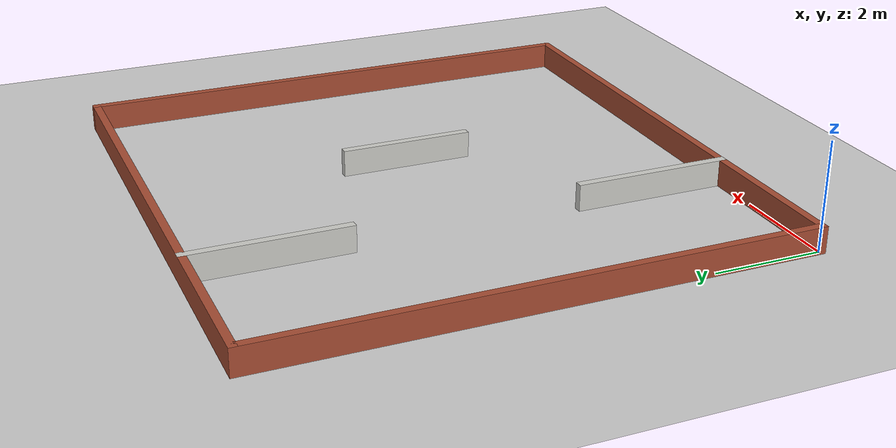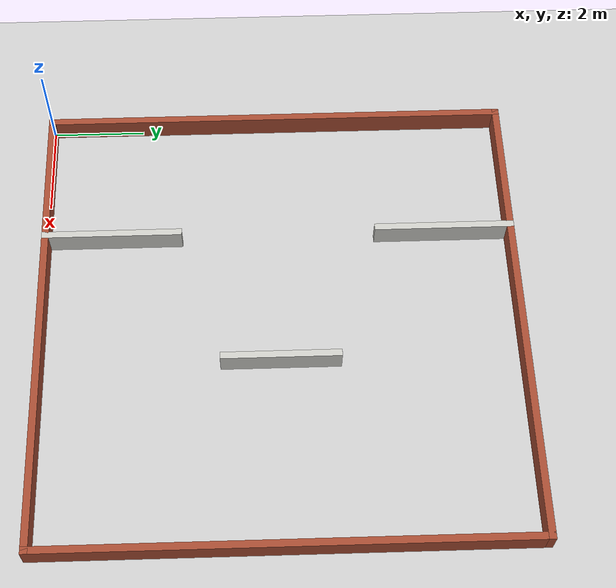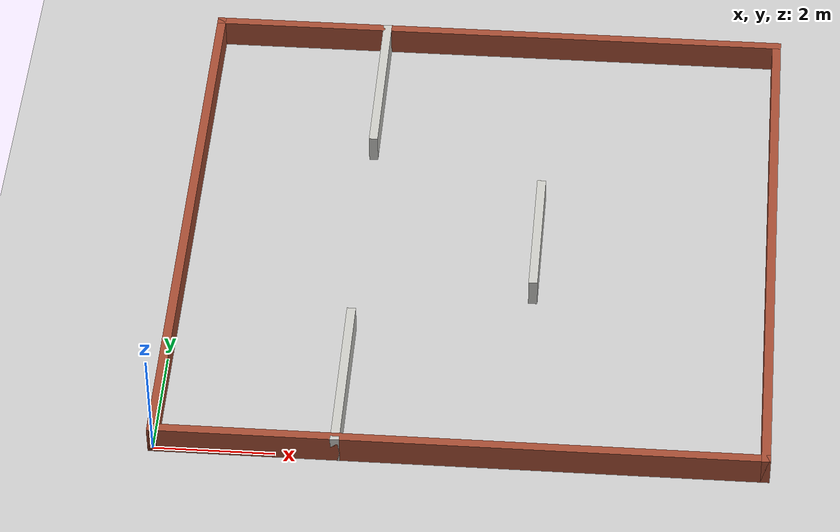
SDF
<sdf version="1.7">
 <world name="default">
  <light name="sun" type="directional">
   <pose>0 0 10 0 -0 0</pose>
   <diffuse>0.8 0.8 0.8 1</diffuse>
   <specular>0.2 0.2 0.2 1</specular>
   <attenuation>
    <range>1000</range>
    <constant>0.9</constant>
    <linear>0.01</linear>
    <quadratic>0.001</quadratic>
   </attenuation>
   <direction>-0.5 0.1 -0.9</direction>
   <spot><inner_angle>0</inner_angle><outer_angle>0</outer_angle><falloff>0</falloff></spot>
  </light>
  <model name="ground_plane">
   <static>1</static>
   <link name="link">
    <collision name="collision">
     <geometry><plane><normal>0 0 1</normal><size>100 100</size></plane></geometry>
     <surface>
      <contact><collide_bitmask>65535</collide_bitmask></contact>
      <friction><ode><mu>100</mu><mu2>50</mu2></ode></friction>
     </surface>
    </collision>
    <visual name="visual">
     <cast_shadows>0</cast_shadows>
     <geometry><plane><normal>0 0 1</normal><size>100 100</size></plane></geometry>
     <material>
      <script><uri>file://media/materials/scripts/gazebo.material</uri><name>Gazebo/Grey</name></script>
     </material>
    </visual>
   </link>
  </model>
  <gravity>0 0 -9.8</gravity>
  <magnetic_field>6e-06 2.3e-05 -4.2e-05</magnetic_field>
  <atmosphere type="adiabatic"/>
  <physics type="ode">
   <max_step_size>0.001</max_step_size>
   <real_time_factor>1</real_time_factor>
   <real_time_update_rate>1000</real_time_update_rate>
  </physics>
  <scene><ambient>0.4 0.4 0.4 1</ambient><background>0.7 0.7 0.7 1</background><shadows>1</shadows></scene>
  <spherical_coordinates>
   <surface_model>EARTH_WGS84</surface_model>
   <latitude_deg>0</latitude_deg>
   <longitude_deg>0</longitude_deg>
   <elevation>0</elevation>
   <heading_deg>0</heading_deg>
  </spherical_coordinates>
  <model name="map_lvl1">
   <pose>5 5 0 0 -0 0</pose>
   <link name="Wall_0">
    <collision name="Wall_0_Collision">
     <geometry><box><size>10.15 0.15 0.5</size></box></geometry>
     <pose>0 0 0.25 0 -0 0</pose>
    </collision>
    <visual name="Wall_0_Visual">
     <pose>0 0 0.25 0 -0 0</pose>
     <geometry><box><size>10.15 0.15 0.5</size></box></geometry>
     <material>
      <script><uri>file://media/materials/scripts/gazebo.material</uri><name>Gazebo/Bricks</name></script>
      <ambient>1 1 1 1</ambient>
     </material>
     <meta><layer>0</layer></meta>
    </visual>
    <pose>-5 -0 0 0 -0 1.5708</pose>
   </link>
   <link name="Wall_11">
    <collision name="Wall_11_Collision">
     <geometry><box><size>3 0.15 0.5</size></box></geometry>
     <pose>0 0 0.25 0 -0 0</pose>
    </collision>
    <visual name="Wall_11_Visual">
     <pose>0 0 0.25 0 -0 0</pose>
     <geometry><box><size>3 0.15 0.5</size></box></geometry>
     <material>
      <script><uri>file://media/materials/scripts/gazebo.material</uri><name>Gazebo/CeilingTiled</name></script>
      <ambient>1 0.764706 0.305882 1</ambient>
     </material>
     <meta><layer>0</layer></meta>
    </visual>
    <pose>-2 3.575 0 0 -0 -1.5708</pose>
   </link>
   <link name="Wall_13">
    <collision name="Wall_13_Collision">
     <geometry><box><size>2.5 0.15 0.5</size></box></geometry>
     <pose>0 0 0.25 0 -0 0</pose>
    </collision>
    <visual name="Wall_13_Visual">
     <pose>0 0 0.25 0 -0 0</pose>
     <geometry><box><size>2.5 0.15 0.5</size></box></geometry>
     <material>
      <script><uri>file://media/materials/scripts/gazebo.material</uri><name>Gazebo/CeilingTiled</name></script>
      <ambient>1 0.764706 0.305882 1</ambient>
     </material>
     <meta><layer>0</layer></meta>
    </visual>
    <pose>1 -0.024 0 0 -0 1.5708</pose>
   </link>
   <link name="Wall_2">
    <collision name="Wall_2_Collision">
     <geometry><box><size>10.15 0.15 0.5</size></box></geometry>
     <pose>0 0 0.25 0 -0 0</pose>
    </collision>
    <visual name="Wall_2_Visual">
     <pose>0 0 0.25 0 -0 0</pose>
     <geometry><box><size>10.15 0.15 0.5</size></box></geometry>
     <material>
      <script><uri>file://media/materials/scripts/gazebo.material</uri><name>Gazebo/Bricks</name></script>
      <ambient>1 1 1 1</ambient>
     </material>
     <meta><layer>0</layer></meta>
    </visual>
    <pose>-0 -5 0 0 -0 0</pose>
   </link>
   <link name="Wall_4">
    <collision name="Wall_4_Collision">
     <geometry><box><size>10.15 0.15 0.5</size></box></geometry>
     <pose>0 0 0.25 0 -0 0</pose>
    </collision>
    <visual name="Wall_4_Visual">
     <pose>0 0 0.25 0 -0 0</pose>
     <geometry><box><size>10.15 0.15 0.5</size></box></geometry>
     <material>
      <script><uri>file://media/materials/scripts/gazebo.material</uri><name>Gazebo/Bricks</name></script>
      <ambient>1 1 1 1</ambient>
     </material>
     <meta><layer>0</layer></meta>
    </visual>
    <pose>5 -0 0 0 -0 1.5708</pose>
   </link>
   <link name="Wall_6">
    <collision name="Wall_6_Collision">
     <geometry><box><size>10.15 0.15 0.5</size></box></geometry>
     <pose>0 0 0.25 0 -0 0</pose>
    </collision>
    <visual name="Wall_6_Visual">
     <pose>0 0 0.25 0 -0 0</pose>
     <geometry><box><size>10.15 0.15 0.5</size></box></geometry>
     <material>
      <script><uri>file://media/materials/scripts/gazebo.material</uri><name>Gazebo/Bricks</name></script>
      <ambient>1 1 1 1</ambient>
     </material>
     <meta><layer>0</layer></meta>
    </visual>
    <pose>-0 5 0 0 -0 3.14159</pose>
   </link>
   <link name="Wall_9">
    <collision name="Wall_9_Collision">
     <geometry><box><size>3 0.15 0.5</size></box></geometry>
     <pose>0 0 0.25 0 -0 0</pose>
    </collision>
    <visual name="Wall_9_Visual">
     <pose>0 0 0.25 0 -0 0</pose>
     <geometry><box><size>3 0.15 0.5</size></box></geometry>
     <material>
      <script><uri>file://media/materials/scripts/gazebo.material</uri><name>Gazebo/CeilingTiled</name></script>
      <ambient>1 0.764706 0.305882 1</ambient>
     </material>
     <meta><layer>0</layer></meta>
    </visual>
    <pose>-2 -3.575 0 0 -0 1.5708</pose>
   </link>
   <static>1</static>
  </model>
 </world>
</sdf>
